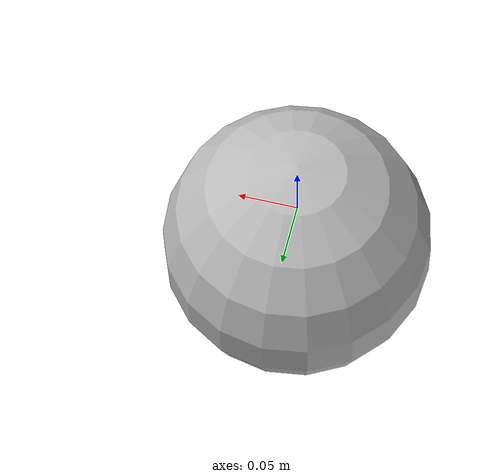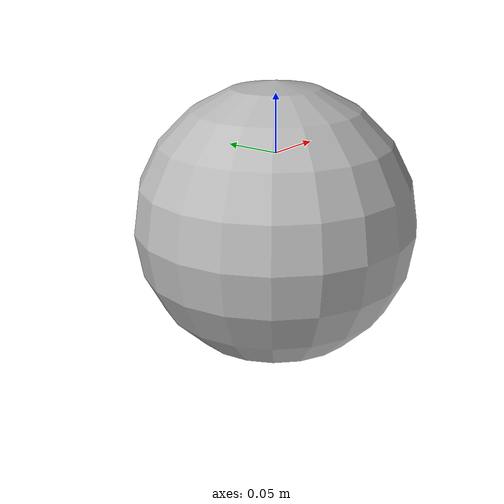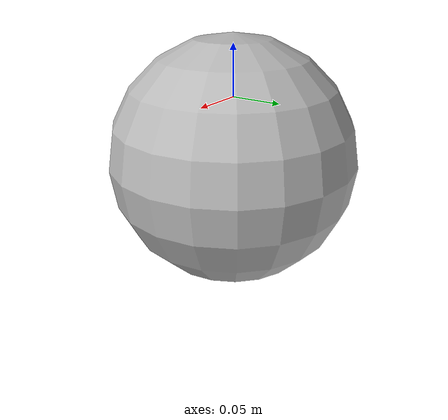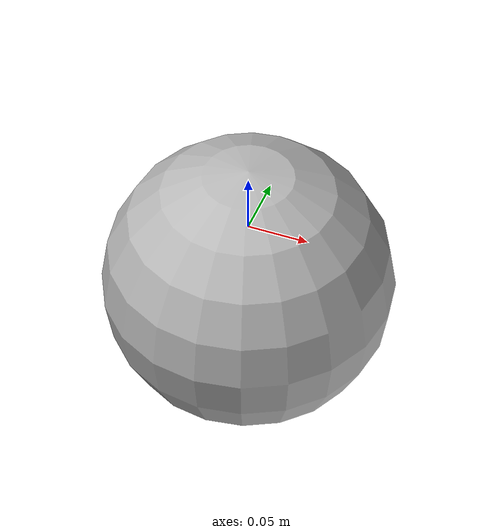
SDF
<?xml version='1.0'?>
<sdf version='1.4'>
  <model name="rock">
  <static>true</static>
    <link name="rock">
      <pose>0 0 -0.06 0 0 0</pose>

      <collision name="collision">
        <geometry>
          <sphere>
            <radius>.12</radius>
          </sphere>
        </geometry>
      </collision>

      <visual name="visual">
        <geometry>
          <sphere>
            <radius>.12</radius>
          </sphere>
        </geometry>
        <material>
	  <script>
	    	<uri>model://rock/materials/scripts</uri>
		<uri>model://rock/materials/textures</uri>
		<name>Rock/Granite</name>
	  </script>
        </material>
      </visual>

    <inertial>
      <pose>0 0 0 0 0 0</pose>
      <mass>0.2</mass>
      <inertia>
        <ixx>1.0</ixx>
        <ixy>0.0</ixy>
        <ixz>0.0</ixz>
        <iyy>1.0</iyy>
        <iyz>0.0</iyz>
        <izz>1</izz>
      </inertia>
    </inertial>
    </link>
  </model>
</sdf>
